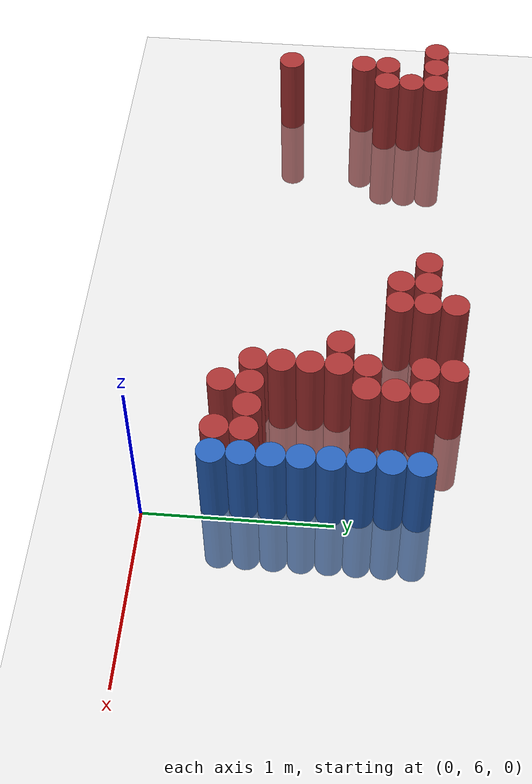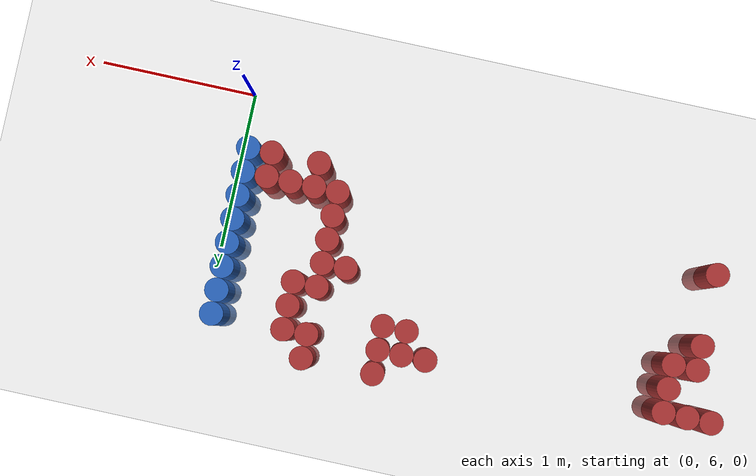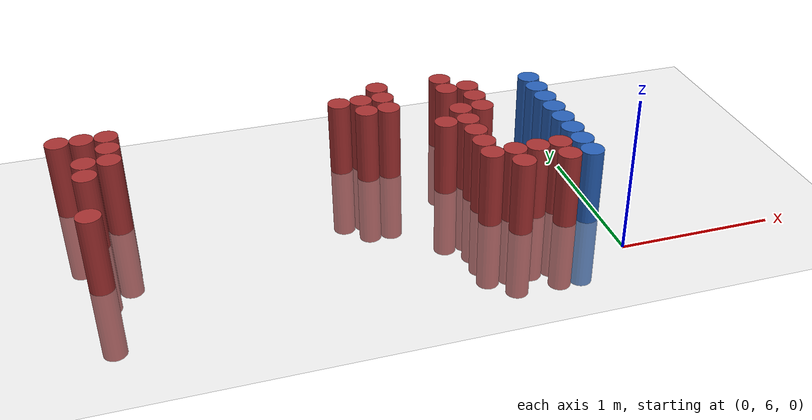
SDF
<sdf version="1.6">
 <world name="default">
  <model name="ground_plane">
   <static>1</static>
   <link name="link">
    <collision name="collision">
     <geometry><plane><normal>0 0 1</normal><size>100 100</size></plane></geometry>
     <surface><friction><ode><mu>100</mu><mu2>50</mu2></ode></friction></surface>
    </collision>
    <visual name="visual">
     <cast_shadows>0</cast_shadows>
     <geometry><plane><normal>0 0 1</normal><size>100 100</size></plane></geometry>
     <material>
      <script><uri>file://media/materials/scripts/gazebo.material</uri><name>Gazebo/Grey</name></script>
     </material>
    </visual>
   </link>
  </model>
  <model name="unit_cylinder_192">
   <static>1</static>
   <pose>-3.225000 7.425000 0.000000 0.000000 0.000000 0.000000</pose>
   <link name="link">
    <inertial>
     <mass>1</mass>
     <inertia><ixx>0.145833</ixx><ixy>0</ixy><ixz>0</ixz><iyy>0.145833</iyy><iyz>0</iyz><izz>0.125</izz></inertia>
    </inertial>
    <collision name="collision">
     <geometry><cylinder><radius>0.075000</radius><length>1</length></cylinder></geometry>
    </collision>
    <visual name="visual">
     <geometry><cylinder><radius>0.075000</radius><length>1</length></cylinder></geometry>
     <material>
      <ambient>0.648000 0.192000 0.192000 1</ambient>
      <diffuse>0.648000 0.192000 0.192000 1</diffuse>
     </material>
     <material>
      <script><name>Gazebo/Grey</name><uri>file://media/materials/scripts/gazebo.material</uri></script>
     </material>
    </visual>
    <sensor name="sensor_contact" type="contact"><contact><collision>collision</collision></contact></sensor>
   </link>
   <plugin filename="gz-sim-touchplugin-system" name="gz::sim::systems::TouchPlugin">
    <target>robot</target>
    <namespace>robot</namespace>
    <time>0.001</time>
    <enabled>true</enabled>
   </plugin>
  </model>
  <model name="unit_cylinder_200">
   <static>1</static>
   <pose>-3.075000 6.525000 0.000000 0.000000 0.000000 0.000000</pose>
   <link name="link">
    <inertial>
     <mass>1</mass>
     <inertia><ixx>0.145833</ixx><ixy>0</ixy><ixz>0</ixz><iyy>0.145833</iyy><iyz>0</iyz><izz>0.125</izz></inertia>
    </inertial>
    <collision name="collision">
     <geometry><cylinder><radius>0.075000</radius><length>1</length></cylinder></geometry>
    </collision>
    <visual name="visual">
     <geometry><cylinder><radius>0.075000</radius><length>1</length></cylinder></geometry>
     <material>
      <ambient>0.648000 0.192000 0.192000 1</ambient>
      <diffuse>0.648000 0.192000 0.192000 1</diffuse>
     </material>
     <material>
      <script><name>Gazebo/Grey</name><uri>file://media/materials/scripts/gazebo.material</uri></script>
     </material>
    </visual>
    <sensor name="sensor_contact" type="contact"><contact><collision>collision</collision></contact></sensor>
   </link>
   <plugin filename="gz-sim-touchplugin-system" name="gz::sim::systems::TouchPlugin">
    <target>robot</target>
    <namespace>robot</namespace>
    <time>0.001</time>
    <enabled>true</enabled>
   </plugin>
  </model>
  <model name="unit_cylinder_201">
   <static>1</static>
   <pose>-3.075000 6.975000 0.000000 0.000000 0.000000 0.000000</pose>
   <link name="link">
    <inertial>
     <mass>1</mass>
     <inertia><ixx>0.145833</ixx><ixy>0</ixy><ixz>0</ixz><iyy>0.145833</iyy><iyz>0</iyz><izz>0.125</izz></inertia>
    </inertial>
    <collision name="collision">
     <geometry><cylinder><radius>0.075000</radius><length>1</length></cylinder></geometry>
    </collision>
    <visual name="visual">
     <geometry><cylinder><radius>0.075000</radius><length>1</length></cylinder></geometry>
     <material>
      <ambient>0.648000 0.192000 0.192000 1</ambient>
      <diffuse>0.648000 0.192000 0.192000 1</diffuse>
     </material>
     <material>
      <script><name>Gazebo/Grey</name><uri>file://media/materials/scripts/gazebo.material</uri></script>
     </material>
    </visual>
    <sensor name="sensor_contact" type="contact"><contact><collision>collision</collision></contact></sensor>
   </link>
   <plugin filename="gz-sim-touchplugin-system" name="gz::sim::systems::TouchPlugin">
    <target>robot</target>
    <namespace>robot</namespace>
    <time>0.001</time>
    <enabled>true</enabled>
   </plugin>
  </model>
  <model name="unit_cylinder_202">
   <static>1</static>
   <pose>-3.075000 7.125000 0.000000 0.000000 0.000000 0.000000</pose>
   <link name="link">
    <inertial>
     <mass>1</mass>
     <inertia><ixx>0.145833</ixx><ixy>0</ixy><ixz>0</ixz><iyy>0.145833</iyy><iyz>0</iyz><izz>0.125</izz></inertia>
    </inertial>
    <collision name="collision">
     <geometry><cylinder><radius>0.075000</radius><length>1</length></cylinder></geometry>
    </collision>
    <visual name="visual">
     <geometry><cylinder><radius>0.075000</radius><length>1</length></cylinder></geometry>
     <material>
      <ambient>0.648000 0.192000 0.192000 1</ambient>
      <diffuse>0.648000 0.192000 0.192000 1</diffuse>
     </material>
     <material>
      <script><name>Gazebo/Grey</name><uri>file://media/materials/scripts/gazebo.material</uri></script>
     </material>
    </visual>
    <sensor name="sensor_contact" type="contact"><contact><collision>collision</collision></contact></sensor>
   </link>
   <plugin filename="gz-sim-touchplugin-system" name="gz::sim::systems::TouchPlugin">
    <target>robot</target>
    <namespace>robot</namespace>
    <time>0.001</time>
    <enabled>true</enabled>
   </plugin>
  </model>
  <model name="unit_cylinder_203">
   <static>1</static>
   <pose>-3.075000 7.425000 0.000000 0.000000 0.000000 0.000000</pose>
   <link name="link">
    <inertial>
     <mass>1</mass>
     <inertia><ixx>0.145833</ixx><ixy>0</ixy><ixz>0</ixz><iyy>0.145833</iyy><iyz>0</iyz><izz>0.125</izz></inertia>
    </inertial>
    <collision name="collision">
     <geometry><cylinder><radius>0.075000</radius><length>1</length></cylinder></geometry>
    </collision>
    <visual name="visual">
     <geometry><cylinder><radius>0.075000</radius><length>1</length></cylinder></geometry>
     <material>
      <ambient>0.648000 0.192000 0.192000 1</ambient>
      <diffuse>0.648000 0.192000 0.192000 1</diffuse>
     </material>
     <material>
      <script><name>Gazebo/Grey</name><uri>file://media/materials/scripts/gazebo.material</uri></script>
     </material>
    </visual>
    <sensor name="sensor_contact" type="contact"><contact><collision>collision</collision></contact></sensor>
   </link>
   <plugin filename="gz-sim-touchplugin-system" name="gz::sim::systems::TouchPlugin">
    <target>robot</target>
    <namespace>robot</namespace>
    <time>0.001</time>
    <enabled>true</enabled>
   </plugin>
  </model>
  <model name="unit_cylinder_210">
   <static>1</static>
   <pose>-2.925000 7.125000 0.000000 0.000000 0.000000 0.000000</pose>
   <link name="link">
    <inertial>
     <mass>1</mass>
     <inertia><ixx>0.145833</ixx><ixy>0</ixy><ixz>0</ixz><iyy>0.145833</iyy><iyz>0</iyz><izz>0.125</izz></inertia>
    </inertial>
    <collision name="collision">
     <geometry><cylinder><radius>0.075000</radius><length>1</length></cylinder></geometry>
    </collision>
    <visual name="visual">
     <geometry><cylinder><radius>0.075000</radius><length>1</length></cylinder></geometry>
     <material>
      <ambient>0.648000 0.192000 0.192000 1</ambient>
      <diffuse>0.648000 0.192000 0.192000 1</diffuse>
     </material>
     <material>
      <script><name>Gazebo/Grey</name><uri>file://media/materials/scripts/gazebo.material</uri></script>
     </material>
    </visual>
    <sensor name="sensor_contact" type="contact"><contact><collision>collision</collision></contact></sensor>
   </link>
   <plugin filename="gz-sim-touchplugin-system" name="gz::sim::systems::TouchPlugin">
    <target>robot</target>
    <namespace>robot</namespace>
    <time>0.001</time>
    <enabled>true</enabled>
   </plugin>
  </model>
  <model name="unit_cylinder_211">
   <static>1</static>
   <pose>-2.925000 7.275000 0.000000 0.000000 0.000000 0.000000</pose>
   <link name="link">
    <inertial>
     <mass>1</mass>
     <inertia><ixx>0.145833</ixx><ixy>0</ixy><ixz>0</ixz><iyy>0.145833</iyy><iyz>0</iyz><izz>0.125</izz></inertia>
    </inertial>
    <collision name="collision">
     <geometry><cylinder><radius>0.075000</radius><length>1</length></cylinder></geometry>
    </collision>
    <visual name="visual">
     <geometry><cylinder><radius>0.075000</radius><length>1</length></cylinder></geometry>
     <material>
      <ambient>0.648000 0.192000 0.192000 1</ambient>
      <diffuse>0.648000 0.192000 0.192000 1</diffuse>
     </material>
     <material>
      <script><name>Gazebo/Grey</name><uri>file://media/materials/scripts/gazebo.material</uri></script>
     </material>
    </visual>
    <sensor name="sensor_contact" type="contact"><contact><collision>collision</collision></contact></sensor>
   </link>
   <plugin filename="gz-sim-touchplugin-system" name="gz::sim::systems::TouchPlugin">
    <target>robot</target>
    <namespace>robot</namespace>
    <time>0.001</time>
    <enabled>true</enabled>
   </plugin>
  </model>
  <model name="unit_cylinder_212">
   <static>1</static>
   <pose>-2.925000 7.425000 0.000000 0.000000 0.000000 0.000000</pose>
   <link name="link">
    <inertial>
     <mass>1</mass>
     <inertia><ixx>0.145833</ixx><ixy>0</ixy><ixz>0</ixz><iyy>0.145833</iyy><iyz>0</iyz><izz>0.125</izz></inertia>
    </inertial>
    <collision name="collision">
     <geometry><cylinder><radius>0.075000</radius><length>1</length></cylinder></geometry>
    </collision>
    <visual name="visual">
     <geometry><cylinder><radius>0.075000</radius><length>1</length></cylinder></geometry>
     <material>
      <ambient>0.648000 0.192000 0.192000 1</ambient>
      <diffuse>0.648000 0.192000 0.192000 1</diffuse>
     </material>
     <material>
      <script><name>Gazebo/Grey</name><uri>file://media/materials/scripts/gazebo.material</uri></script>
     </material>
    </visual>
    <sensor name="sensor_contact" type="contact"><contact><collision>collision</collision></contact></sensor>
   </link>
   <plugin filename="gz-sim-touchplugin-system" name="gz::sim::systems::TouchPlugin">
    <target>robot</target>
    <namespace>robot</namespace>
    <time>0.001</time>
    <enabled>true</enabled>
   </plugin>
  </model>
  <model name="unit_cylinder_232">
   <static>1</static>
   <pose>-1.425000 7.425000 0.000000 0.000000 0.000000 0.000000</pose>
   <link name="link">
    <inertial>
     <mass>1</mass>
     <inertia><ixx>0.145833</ixx><ixy>0</ixy><ixz>0</ixz><iyy>0.145833</iyy><iyz>0</iyz><izz>0.125</izz></inertia>
    </inertial>
    <collision name="collision">
     <geometry><cylinder><radius>0.075000</radius><length>1</length></cylinder></geometry>
    </collision>
    <visual name="visual">
     <geometry><cylinder><radius>0.075000</radius><length>1</length></cylinder></geometry>
     <material>
      <ambient>0.648000 0.192000 0.192000 1</ambient>
      <diffuse>0.648000 0.192000 0.192000 1</diffuse>
     </material>
     <material>
      <script><name>Gazebo/Grey</name><uri>file://media/materials/scripts/gazebo.material</uri></script>
     </material>
    </visual>
    <sensor name="sensor_contact" type="contact"><contact><collision>collision</collision></contact></sensor>
   </link>
   <plugin filename="gz-sim-touchplugin-system" name="gz::sim::systems::TouchPlugin">
    <target>robot</target>
    <namespace>robot</namespace>
    <time>0.001</time>
    <enabled>true</enabled>
   </plugin>
  </model>
  <model name="unit_cylinder_238">
   <static>1</static>
   <pose>-1.275000 7.275000 0.000000 0.000000 0.000000 0.000000</pose>
   <link name="link">
    <inertial>
     <mass>1</mass>
     <inertia><ixx>0.145833</ixx><ixy>0</ixy><ixz>0</ixz><iyy>0.145833</iyy><iyz>0</iyz><izz>0.125</izz></inertia>
    </inertial>
    <collision name="collision">
     <geometry><cylinder><radius>0.075000</radius><length>1</length></cylinder></geometry>
    </collision>
    <visual name="visual">
     <geometry><cylinder><radius>0.075000</radius><length>1</length></cylinder></geometry>
     <material>
      <ambient>0.648000 0.192000 0.192000 1</ambient>
      <diffuse>0.648000 0.192000 0.192000 1</diffuse>
     </material>
     <material>
      <script><name>Gazebo/Grey</name><uri>file://media/materials/scripts/gazebo.material</uri></script>
     </material>
    </visual>
    <sensor name="sensor_contact" type="contact"><contact><collision>collision</collision></contact></sensor>
   </link>
   <plugin filename="gz-sim-touchplugin-system" name="gz::sim::systems::TouchPlugin">
    <target>robot</target>
    <namespace>robot</namespace>
    <time>0.001</time>
    <enabled>true</enabled>
   </plugin>
  </model>
  <model name="unit_cylinder_239">
   <static>1</static>
   <pose>-1.275000 7.425000 0.000000 0.000000 0.000000 0.000000</pose>
   <link name="link">
    <inertial>
     <mass>1</mass>
     <inertia><ixx>0.145833</ixx><ixy>0</ixy><ixz>0</ixz><iyy>0.145833</iyy><iyz>0</iyz><izz>0.125</izz></inertia>
    </inertial>
    <collision name="collision">
     <geometry><cylinder><radius>0.075000</radius><length>1</length></cylinder></geometry>
    </collision>
    <visual name="visual">
     <geometry><cylinder><radius>0.075000</radius><length>1</length></cylinder></geometry>
     <material>
      <ambient>0.648000 0.192000 0.192000 1</ambient>
      <diffuse>0.648000 0.192000 0.192000 1</diffuse>
     </material>
     <material>
      <script><name>Gazebo/Grey</name><uri>file://media/materials/scripts/gazebo.material</uri></script>
     </material>
    </visual>
    <sensor name="sensor_contact" type="contact"><contact><collision>collision</collision></contact></sensor>
   </link>
   <plugin filename="gz-sim-touchplugin-system" name="gz::sim::systems::TouchPlugin">
    <target>robot</target>
    <namespace>robot</namespace>
    <time>0.001</time>
    <enabled>true</enabled>
   </plugin>
  </model>
  <model name="unit_cylinder_246">
   <static>1</static>
   <pose>-1.125000 7.275000 0.000000 0.000000 0.000000 0.000000</pose>
   <link name="link">
    <inertial>
     <mass>1</mass>
     <inertia><ixx>0.145833</ixx><ixy>0</ixy><ixz>0</ixz><iyy>0.145833</iyy><iyz>0</iyz><izz>0.125</izz></inertia>
    </inertial>
    <collision name="collision">
     <geometry><cylinder><radius>0.075000</radius><length>1</length></cylinder></geometry>
    </collision>
    <visual name="visual">
     <geometry><cylinder><radius>0.075000</radius><length>1</length></cylinder></geometry>
     <material>
      <ambient>0.648000 0.192000 0.192000 1</ambient>
      <diffuse>0.648000 0.192000 0.192000 1</diffuse>
     </material>
     <material>
      <script><name>Gazebo/Grey</name><uri>file://media/materials/scripts/gazebo.material</uri></script>
     </material>
    </visual>
    <sensor name="sensor_contact" type="contact"><contact><collision>collision</collision></contact></sensor>
   </link>
   <plugin filename="gz-sim-touchplugin-system" name="gz::sim::systems::TouchPlugin">
    <target>robot</target>
    <namespace>robot</namespace>
    <time>0.001</time>
    <enabled>true</enabled>
   </plugin>
  </model>
  <model name="unit_cylinder_247">
   <static>1</static>
   <pose>-1.125000 7.425000 0.000000 0.000000 0.000000 0.000000</pose>
   <link name="link">
    <inertial>
     <mass>1</mass>
     <inertia><ixx>0.145833</ixx><ixy>0</ixy><ixz>0</ixz><iyy>0.145833</iyy><iyz>0</iyz><izz>0.125</izz></inertia>
    </inertial>
    <collision name="collision">
     <geometry><cylinder><radius>0.075000</radius><length>1</length></cylinder></geometry>
    </collision>
    <visual name="visual">
     <geometry><cylinder><radius>0.075000</radius><length>1</length></cylinder></geometry>
     <material>
      <ambient>0.648000 0.192000 0.192000 1</ambient>
      <diffuse>0.648000 0.192000 0.192000 1</diffuse>
     </material>
     <material>
      <script><name>Gazebo/Grey</name><uri>file://media/materials/scripts/gazebo.material</uri></script>
     </material>
    </visual>
    <sensor name="sensor_contact" type="contact"><contact><collision>collision</collision></contact></sensor>
   </link>
   <plugin filename="gz-sim-touchplugin-system" name="gz::sim::systems::TouchPlugin">
    <target>robot</target>
    <namespace>robot</namespace>
    <time>0.001</time>
    <enabled>true</enabled>
   </plugin>
  </model>
  <model name="unit_cylinder_248">
   <static>1</static>
   <pose>-1.125000 7.575000 0.000000 0.000000 0.000000 0.000000</pose>
   <link name="link">
    <inertial>
     <mass>1</mass>
     <inertia><ixx>0.145833</ixx><ixy>0</ixy><ixz>0</ixz><iyy>0.145833</iyy><iyz>0</iyz><izz>0.125</izz></inertia>
    </inertial>
    <collision name="collision">
     <geometry><cylinder><radius>0.075000</radius><length>1</length></cylinder></geometry>
    </collision>
    <visual name="visual">
     <geometry><cylinder><radius>0.075000</radius><length>1</length></cylinder></geometry>
     <material>
      <ambient>0.648000 0.192000 0.192000 1</ambient>
      <diffuse>0.648000 0.192000 0.192000 1</diffuse>
     </material>
     <material>
      <script><name>Gazebo/Grey</name><uri>file://media/materials/scripts/gazebo.material</uri></script>
     </material>
    </visual>
    <sensor name="sensor_contact" type="contact"><contact><collision>collision</collision></contact></sensor>
   </link>
   <plugin filename="gz-sim-touchplugin-system" name="gz::sim::systems::TouchPlugin">
    <target>robot</target>
    <namespace>robot</namespace>
    <time>0.001</time>
    <enabled>true</enabled>
   </plugin>
  </model>
  <model name="unit_cylinder_259">
   <static>1</static>
   <pose>-0.825000 6.975000 0.000000 0.000000 0.000000 0.000000</pose>
   <link name="link">
    <inertial>
     <mass>1</mass>
     <inertia><ixx>0.145833</ixx><ixy>0</ixy><ixz>0</ixz><iyy>0.145833</iyy><iyz>0</iyz><izz>0.125</izz></inertia>
    </inertial>
    <collision name="collision">
     <geometry><cylinder><radius>0.075000</radius><length>1</length></cylinder></geometry>
    </collision>
    <visual name="visual">
     <geometry><cylinder><radius>0.075000</radius><length>1</length></cylinder></geometry>
     <material>
      <ambient>0.648000 0.192000 0.192000 1</ambient>
      <diffuse>0.648000 0.192000 0.192000 1</diffuse>
     </material>
     <material>
      <script><name>Gazebo/Grey</name><uri>file://media/materials/scripts/gazebo.material</uri></script>
     </material>
    </visual>
    <sensor name="sensor_contact" type="contact"><contact><collision>collision</collision></contact></sensor>
   </link>
   <plugin filename="gz-sim-touchplugin-system" name="gz::sim::systems::TouchPlugin">
    <target>robot</target>
    <namespace>robot</namespace>
    <time>0.001</time>
    <enabled>true</enabled>
   </plugin>
  </model>
  <model name="unit_cylinder_267">
   <static>1</static>
   <pose>-0.675000 6.525000 0.000000 0.000000 0.000000 0.000000</pose>
   <link name="link">
    <inertial>
     <mass>1</mass>
     <inertia><ixx>0.145833</ixx><ixy>0</ixy><ixz>0</ixz><iyy>0.145833</iyy><iyz>0</iyz><izz>0.125</izz></inertia>
    </inertial>
    <collision name="collision">
     <geometry><cylinder><radius>0.075000</radius><length>1</length></cylinder></geometry>
    </collision>
    <visual name="visual">
     <geometry><cylinder><radius>0.075000</radius><length>1</length></cylinder></geometry>
     <material>
      <ambient>0.648000 0.192000 0.192000 1</ambient>
      <diffuse>0.648000 0.192000 0.192000 1</diffuse>
     </material>
     <material>
      <script><name>Gazebo/Grey</name><uri>file://media/materials/scripts/gazebo.material</uri></script>
     </material>
    </visual>
    <sensor name="sensor_contact" type="contact"><contact><collision>collision</collision></contact></sensor>
   </link>
   <plugin filename="gz-sim-touchplugin-system" name="gz::sim::systems::TouchPlugin">
    <target>robot</target>
    <namespace>robot</namespace>
    <time>0.001</time>
    <enabled>true</enabled>
   </plugin>
  </model>
  <model name="unit_cylinder_268">
   <static>1</static>
   <pose>-0.675000 6.675000 0.000000 0.000000 0.000000 0.000000</pose>
   <link name="link">
    <inertial>
     <mass>1</mass>
     <inertia><ixx>0.145833</ixx><ixy>0</ixy><ixz>0</ixz><iyy>0.145833</iyy><iyz>0</iyz><izz>0.125</izz></inertia>
    </inertial>
    <collision name="collision">
     <geometry><cylinder><radius>0.075000</radius><length>1</length></cylinder></geometry>
    </collision>
    <visual name="visual">
     <geometry><cylinder><radius>0.075000</radius><length>1</length></cylinder></geometry>
     <material>
      <ambient>0.648000 0.192000 0.192000 1</ambient>
      <diffuse>0.648000 0.192000 0.192000 1</diffuse>
     </material>
     <material>
      <script><name>Gazebo/Grey</name><uri>file://media/materials/scripts/gazebo.material</uri></script>
     </material>
    </visual>
    <sensor name="sensor_contact" type="contact"><contact><collision>collision</collision></contact></sensor>
   </link>
   <plugin filename="gz-sim-touchplugin-system" name="gz::sim::systems::TouchPlugin">
    <target>robot</target>
    <namespace>robot</namespace>
    <time>0.001</time>
    <enabled>true</enabled>
   </plugin>
  </model>
  <model name="unit_cylinder_269">
   <static>1</static>
   <pose>-0.675000 6.825000 0.000000 0.000000 0.000000 0.000000</pose>
   <link name="link">
    <inertial>
     <mass>1</mass>
     <inertia><ixx>0.145833</ixx><ixy>0</ixy><ixz>0</ixz><iyy>0.145833</iyy><iyz>0</iyz><izz>0.125</izz></inertia>
    </inertial>
    <collision name="collision">
     <geometry><cylinder><radius>0.075000</radius><length>1</length></cylinder></geometry>
    </collision>
    <visual name="visual">
     <geometry><cylinder><radius>0.075000</radius><length>1</length></cylinder></geometry>
     <material>
      <ambient>0.648000 0.192000 0.192000 1</ambient>
      <diffuse>0.648000 0.192000 0.192000 1</diffuse>
     </material>
     <material>
      <script><name>Gazebo/Grey</name><uri>file://media/materials/scripts/gazebo.material</uri></script>
     </material>
    </visual>
    <sensor name="sensor_contact" type="contact"><contact><collision>collision</collision></contact></sensor>
   </link>
   <plugin filename="gz-sim-touchplugin-system" name="gz::sim::systems::TouchPlugin">
    <target>robot</target>
    <namespace>robot</namespace>
    <time>0.001</time>
    <enabled>true</enabled>
   </plugin>
  </model>
  <model name="unit_cylinder_270">
   <static>1</static>
   <pose>-0.675000 6.975000 0.000000 0.000000 0.000000 0.000000</pose>
   <link name="link">
    <inertial>
     <mass>1</mass>
     <inertia><ixx>0.145833</ixx><ixy>0</ixy><ixz>0</ixz><iyy>0.145833</iyy><iyz>0</iyz><izz>0.125</izz></inertia>
    </inertial>
    <collision name="collision">
     <geometry><cylinder><radius>0.075000</radius><length>1</length></cylinder></geometry>
    </collision>
    <visual name="visual">
     <geometry><cylinder><radius>0.075000</radius><length>1</length></cylinder></geometry>
     <material>
      <ambient>0.648000 0.192000 0.192000 1</ambient>
      <diffuse>0.648000 0.192000 0.192000 1</diffuse>
     </material>
     <material>
      <script><name>Gazebo/Grey</name><uri>file://media/materials/scripts/gazebo.material</uri></script>
     </material>
    </visual>
    <sensor name="sensor_contact" type="contact"><contact><collision>collision</collision></contact></sensor>
   </link>
   <plugin filename="gz-sim-touchplugin-system" name="gz::sim::systems::TouchPlugin">
    <target>robot</target>
    <namespace>robot</namespace>
    <time>0.001</time>
    <enabled>true</enabled>
   </plugin>
  </model>
  <model name="unit_cylinder_271">
   <static>1</static>
   <pose>-0.675000 7.125000 0.000000 0.000000 0.000000 0.000000</pose>
   <link name="link">
    <inertial>
     <mass>1</mass>
     <inertia><ixx>0.145833</ixx><ixy>0</ixy><ixz>0</ixz><iyy>0.145833</iyy><iyz>0</iyz><izz>0.125</izz></inertia>
    </inertial>
    <collision name="collision">
     <geometry><cylinder><radius>0.075000</radius><length>1</length></cylinder></geometry>
    </collision>
    <visual name="visual">
     <geometry><cylinder><radius>0.075000</radius><length>1</length></cylinder></geometry>
     <material>
      <ambient>0.648000 0.192000 0.192000 1</ambient>
      <diffuse>0.648000 0.192000 0.192000 1</diffuse>
     </material>
     <material>
      <script><name>Gazebo/Grey</name><uri>file://media/materials/scripts/gazebo.material</uri></script>
     </material>
    </visual>
    <sensor name="sensor_contact" type="contact"><contact><collision>collision</collision></contact></sensor>
   </link>
   <plugin filename="gz-sim-touchplugin-system" name="gz::sim::systems::TouchPlugin">
    <target>robot</target>
    <namespace>robot</namespace>
    <time>0.001</time>
    <enabled>true</enabled>
   </plugin>
  </model>
  <model name="unit_cylinder_272">
   <static>1</static>
   <pose>-0.675000 7.425000 0.000000 0.000000 0.000000 0.000000</pose>
   <link name="link">
    <inertial>
     <mass>1</mass>
     <inertia><ixx>0.145833</ixx><ixy>0</ixy><ixz>0</ixz><iyy>0.145833</iyy><iyz>0</iyz><izz>0.125</izz></inertia>
    </inertial>
    <collision name="collision">
     <geometry><cylinder><radius>0.075000</radius><length>1</length></cylinder></geometry>
    </collision>
    <visual name="visual">
     <geometry><cylinder><radius>0.075000</radius><length>1</length></cylinder></geometry>
     <material>
      <ambient>0.648000 0.192000 0.192000 1</ambient>
      <diffuse>0.648000 0.192000 0.192000 1</diffuse>
     </material>
     <material>
      <script><name>Gazebo/Grey</name><uri>file://media/materials/scripts/gazebo.material</uri></script>
     </material>
    </visual>
    <sensor name="sensor_contact" type="contact"><contact><collision>collision</collision></contact></sensor>
   </link>
   <plugin filename="gz-sim-touchplugin-system" name="gz::sim::systems::TouchPlugin">
    <target>robot</target>
    <namespace>robot</namespace>
    <time>0.001</time>
    <enabled>true</enabled>
   </plugin>
  </model>
  <model name="unit_cylinder_273">
   <static>1</static>
   <pose>-0.675000 7.575000 0.000000 0.000000 0.000000 0.000000</pose>
   <link name="link">
    <inertial>
     <mass>1</mass>
     <inertia><ixx>0.145833</ixx><ixy>0</ixy><ixz>0</ixz><iyy>0.145833</iyy><iyz>0</iyz><izz>0.125</izz></inertia>
    </inertial>
    <collision name="collision">
     <geometry><cylinder><radius>0.075000</radius><length>1</length></cylinder></geometry>
    </collision>
    <visual name="visual">
     <geometry><cylinder><radius>0.075000</radius><length>1</length></cylinder></geometry>
     <material>
      <ambient>0.648000 0.192000 0.192000 1</ambient>
      <diffuse>0.648000 0.192000 0.192000 1</diffuse>
     </material>
     <material>
      <script><name>Gazebo/Grey</name><uri>file://media/materials/scripts/gazebo.material</uri></script>
     </material>
    </visual>
    <sensor name="sensor_contact" type="contact"><contact><collision>collision</collision></contact></sensor>
   </link>
   <plugin filename="gz-sim-touchplugin-system" name="gz::sim::systems::TouchPlugin">
    <target>robot</target>
    <namespace>robot</namespace>
    <time>0.001</time>
    <enabled>true</enabled>
   </plugin>
  </model>
  <model name="unit_cylinder_281">
   <static>1</static>
   <pose>-0.525000 6.375000 0.000000 0.000000 0.000000 0.000000</pose>
   <link name="link">
    <inertial>
     <mass>1</mass>
     <inertia><ixx>0.145833</ixx><ixy>0</ixy><ixz>0</ixz><iyy>0.145833</iyy><iyz>0</iyz><izz>0.125</izz></inertia>
    </inertial>
    <collision name="collision">
     <geometry><cylinder><radius>0.075000</radius><length>1</length></cylinder></geometry>
    </collision>
    <visual name="visual">
     <geometry><cylinder><radius>0.075000</radius><length>1</length></cylinder></geometry>
     <material>
      <ambient>0.648000 0.192000 0.192000 1</ambient>
      <diffuse>0.648000 0.192000 0.192000 1</diffuse>
     </material>
     <material>
      <script><name>Gazebo/Grey</name><uri>file://media/materials/scripts/gazebo.material</uri></script>
     </material>
    </visual>
    <sensor name="sensor_contact" type="contact"><contact><collision>collision</collision></contact></sensor>
   </link>
   <plugin filename="gz-sim-touchplugin-system" name="gz::sim::systems::TouchPlugin">
    <target>robot</target>
    <namespace>robot</namespace>
    <time>0.001</time>
    <enabled>true</enabled>
   </plugin>
  </model>
  <model name="unit_cylinder_282">
   <static>1</static>
   <pose>-0.525000 6.525000 0.000000 0.000000 0.000000 0.000000</pose>
   <link name="link">
    <inertial>
     <mass>1</mass>
     <inertia><ixx>0.145833</ixx><ixy>0</ixy><ixz>0</ixz><iyy>0.145833</iyy><iyz>0</iyz><izz>0.125</izz></inertia>
    </inertial>
    <collision name="collision">
     <geometry><cylinder><radius>0.075000</radius><length>1</length></cylinder></geometry>
    </collision>
    <visual name="visual">
     <geometry><cylinder><radius>0.075000</radius><length>1</length></cylinder></geometry>
     <material>
      <ambient>0.648000 0.192000 0.192000 1</ambient>
      <diffuse>0.648000 0.192000 0.192000 1</diffuse>
     </material>
     <material>
      <script><name>Gazebo/Grey</name><uri>file://media/materials/scripts/gazebo.material</uri></script>
     </material>
    </visual>
    <sensor name="sensor_contact" type="contact"><contact><collision>collision</collision></contact></sensor>
   </link>
   <plugin filename="gz-sim-touchplugin-system" name="gz::sim::systems::TouchPlugin">
    <target>robot</target>
    <namespace>robot</namespace>
    <time>0.001</time>
    <enabled>true</enabled>
   </plugin>
  </model>
  <model name="unit_cylinder_283">
   <static>1</static>
   <pose>-0.525000 7.125000 0.000000 0.000000 0.000000 0.000000</pose>
   <link name="link">
    <inertial>
     <mass>1</mass>
     <inertia><ixx>0.145833</ixx><ixy>0</ixy><ixz>0</ixz><iyy>0.145833</iyy><iyz>0</iyz><izz>0.125</izz></inertia>
    </inertial>
    <collision name="collision">
     <geometry><cylinder><radius>0.075000</radius><length>1</length></cylinder></geometry>
    </collision>
    <visual name="visual">
     <geometry><cylinder><radius>0.075000</radius><length>1</length></cylinder></geometry>
     <material>
      <ambient>0.648000 0.192000 0.192000 1</ambient>
      <diffuse>0.648000 0.192000 0.192000 1</diffuse>
     </material>
     <material>
      <script><name>Gazebo/Grey</name><uri>file://media/materials/scripts/gazebo.material</uri></script>
     </material>
    </visual>
    <sensor name="sensor_contact" type="contact"><contact><collision>collision</collision></contact></sensor>
   </link>
   <plugin filename="gz-sim-touchplugin-system" name="gz::sim::systems::TouchPlugin">
    <target>robot</target>
    <namespace>robot</namespace>
    <time>0.001</time>
    <enabled>true</enabled>
   </plugin>
  </model>
  <model name="unit_cylinder_284">
   <static>1</static>
   <pose>-0.525000 7.275000 0.000000 0.000000 0.000000 0.000000</pose>
   <link name="link">
    <inertial>
     <mass>1</mass>
     <inertia><ixx>0.145833</ixx><ixy>0</ixy><ixz>0</ixz><iyy>0.145833</iyy><iyz>0</iyz><izz>0.125</izz></inertia>
    </inertial>
    <collision name="collision">
     <geometry><cylinder><radius>0.075000</radius><length>1</length></cylinder></geometry>
    </collision>
    <visual name="visual">
     <geometry><cylinder><radius>0.075000</radius><length>1</length></cylinder></geometry>
     <material>
      <ambient>0.648000 0.192000 0.192000 1</ambient>
      <diffuse>0.648000 0.192000 0.192000 1</diffuse>
     </material>
     <material>
      <script><name>Gazebo/Grey</name><uri>file://media/materials/scripts/gazebo.material</uri></script>
     </material>
    </visual>
    <sensor name="sensor_contact" type="contact"><contact><collision>collision</collision></contact></sensor>
   </link>
   <plugin filename="gz-sim-touchplugin-system" name="gz::sim::systems::TouchPlugin">
    <target>robot</target>
    <namespace>robot</namespace>
    <time>0.001</time>
    <enabled>true</enabled>
   </plugin>
  </model>
  <model name="unit_cylinder_285">
   <static>1</static>
   <pose>-0.525000 7.425000 0.000000 0.000000 0.000000 0.000000</pose>
   <link name="link">
    <inertial>
     <mass>1</mass>
     <inertia><ixx>0.145833</ixx><ixy>0</ixy><ixz>0</ixz><iyy>0.145833</iyy><iyz>0</iyz><izz>0.125</izz></inertia>
    </inertial>
    <collision name="collision">
     <geometry><cylinder><radius>0.075000</radius><length>1</length></cylinder></geometry>
    </collision>
    <visual name="visual">
     <geometry><cylinder><radius>0.075000</radius><length>1</length></cylinder></geometry>
     <material>
      <ambient>0.648000 0.192000 0.192000 1</ambient>
      <diffuse>0.648000 0.192000 0.192000 1</diffuse>
     </material>
     <material>
      <script><name>Gazebo/Grey</name><uri>file://media/materials/scripts/gazebo.material</uri></script>
     </material>
    </visual>
    <sensor name="sensor_contact" type="contact"><contact><collision>collision</collision></contact></sensor>
   </link>
   <plugin filename="gz-sim-touchplugin-system" name="gz::sim::systems::TouchPlugin">
    <target>robot</target>
    <namespace>robot</namespace>
    <time>0.001</time>
    <enabled>true</enabled>
   </plugin>
  </model>
  <model name="unit_cylinder_290">
   <static>1</static>
   <pose>-0.375000 6.525000 0.000000 0.000000 0.000000 0.000000</pose>
   <link name="link">
    <inertial>
     <mass>1</mass>
     <inertia><ixx>0.145833</ixx><ixy>0</ixy><ixz>0</ixz><iyy>0.145833</iyy><iyz>0</iyz><izz>0.125</izz></inertia>
    </inertial>
    <collision name="collision">
     <geometry><cylinder><radius>0.075000</radius><length>1</length></cylinder></geometry>
    </collision>
    <visual name="visual">
     <geometry><cylinder><radius>0.075000</radius><length>1</length></cylinder></geometry>
     <material>
      <ambient>0.648000 0.192000 0.192000 1</ambient>
      <diffuse>0.648000 0.192000 0.192000 1</diffuse>
     </material>
     <material>
      <script><name>Gazebo/Grey</name><uri>file://media/materials/scripts/gazebo.material</uri></script>
     </material>
    </visual>
    <sensor name="sensor_contact" type="contact"><contact><collision>collision</collision></contact></sensor>
   </link>
   <plugin filename="gz-sim-touchplugin-system" name="gz::sim::systems::TouchPlugin">
    <target>robot</target>
    <namespace>robot</namespace>
    <time>0.001</time>
    <enabled>true</enabled>
   </plugin>
  </model>
  <model name="unit_cylinder_295">
   <static>1</static>
   <pose>-0.225000 6.375000 0.000000 0.000000 0.000000 0.000000</pose>
   <link name="link">
    <inertial>
     <mass>1</mass>
     <inertia><ixx>0.145833</ixx><ixy>0</ixy><ixz>0</ixz><iyy>0.145833</iyy><iyz>0</iyz><izz>0.125</izz></inertia>
    </inertial>
    <collision name="collision">
     <geometry><cylinder><radius>0.075000</radius><length>1</length></cylinder></geometry>
    </collision>
    <visual name="visual">
     <geometry><cylinder><radius>0.075000</radius><length>1</length></cylinder></geometry>
     <material>
      <ambient>0.648000 0.192000 0.192000 1</ambient>
      <diffuse>0.648000 0.192000 0.192000 1</diffuse>
     </material>
     <material>
      <script><name>Gazebo/Grey</name><uri>file://media/materials/scripts/gazebo.material</uri></script>
     </material>
    </visual>
    <sensor name="sensor_contact" type="contact"><contact><collision>collision</collision></contact></sensor>
   </link>
   <plugin filename="gz-sim-touchplugin-system" name="gz::sim::systems::TouchPlugin">
    <target>robot</target>
    <namespace>robot</namespace>
    <time>0.001</time>
    <enabled>true</enabled>
   </plugin>
  </model>
  <model name="unit_cylinder_296">
   <static>1</static>
   <pose>-0.225000 6.525000 0.000000 0.000000 0.000000 0.000000</pose>
   <link name="link">
    <inertial>
     <mass>1</mass>
     <inertia><ixx>0.145833</ixx><ixy>0</ixy><ixz>0</ixz><iyy>0.145833</iyy><iyz>0</iyz><izz>0.125</izz></inertia>
    </inertial>
    <collision name="collision">
     <geometry><cylinder><radius>0.075000</radius><length>1</length></cylinder></geometry>
    </collision>
    <visual name="visual">
     <geometry><cylinder><radius>0.075000</radius><length>1</length></cylinder></geometry>
     <material>
      <ambient>0.648000 0.192000 0.192000 1</ambient>
      <diffuse>0.648000 0.192000 0.192000 1</diffuse>
     </material>
     <material>
      <script><name>Gazebo/Grey</name><uri>file://media/materials/scripts/gazebo.material</uri></script>
     </material>
    </visual>
    <sensor name="sensor_contact" type="contact"><contact><collision>collision</collision></contact></sensor>
   </link>
   <plugin filename="gz-sim-touchplugin-system" name="gz::sim::systems::TouchPlugin">
    <target>robot</target>
    <namespace>robot</namespace>
    <time>0.001</time>
    <enabled>true</enabled>
   </plugin>
  </model>
  <model name="unit_cylinder_316">
   <static>1</static>
   <pose>-0.075000 6.375000 0.000000 0.000000 0.000000 0.000000</pose>
   <link name="link">
    <inertial>
     <mass>1</mass>
     <inertia><ixx>0.145833</ixx><ixy>0</ixy><ixz>0</ixz><iyy>0.145833</iyy><iyz>0</iyz><izz>0.125</izz></inertia>
    </inertial>
    <collision name="collision">
     <geometry><cylinder><radius>0.075000</radius><length>1</length></cylinder></geometry>
    </collision>
    <visual name="visual">
     <geometry><cylinder><radius>0.075000</radius><length>1</length></cylinder></geometry>
     <material>
      <ambient>0.152000 0.379000 0.720000 1</ambient>
      <diffuse>0.152000 0.379000 0.720000 1</diffuse>
     </material>
     <material>
      <script><name>Gazebo/Grey</name><uri>file://media/materials/scripts/gazebo.material</uri></script>
     </material>
    </visual>
    <sensor name="sensor_contact" type="contact"><contact><collision>collision</collision></contact></sensor>
   </link>
   <plugin filename="gz-sim-touchplugin-system" name="gz::sim::systems::TouchPlugin">
    <target>robot</target>
    <namespace>robot</namespace>
    <time>0.001</time>
    <enabled>true</enabled>
   </plugin>
  </model>
  <model name="unit_cylinder_317">
   <static>1</static>
   <pose>-0.075000 6.525000 0.000000 0.000000 0.000000 0.000000</pose>
   <link name="link">
    <inertial>
     <mass>1</mass>
     <inertia><ixx>0.145833</ixx><ixy>0</ixy><ixz>0</ixz><iyy>0.145833</iyy><iyz>0</iyz><izz>0.125</izz></inertia>
    </inertial>
    <collision name="collision">
     <geometry><cylinder><radius>0.075000</radius><length>1</length></cylinder></geometry>
    </collision>
    <visual name="visual">
     <geometry><cylinder><radius>0.075000</radius><length>1</length></cylinder></geometry>
     <material>
      <ambient>0.152000 0.379000 0.720000 1</ambient>
      <diffuse>0.152000 0.379000 0.720000 1</diffuse>
     </material>
     <material>
      <script><name>Gazebo/Grey</name><uri>file://media/materials/scripts/gazebo.material</uri></script>
     </material>
    </visual>
    <sensor name="sensor_contact" type="contact"><contact><collision>collision</collision></contact></sensor>
   </link>
   <plugin filename="gz-sim-touchplugin-system" name="gz::sim::systems::TouchPlugin">
    <target>robot</target>
    <namespace>robot</namespace>
    <time>0.001</time>
    <enabled>true</enabled>
   </plugin>
  </model>
  <model name="unit_cylinder_318">
   <static>1</static>
   <pose>-0.075000 6.675000 0.000000 0.000000 0.000000 0.000000</pose>
   <link name="link">
    <inertial>
     <mass>1</mass>
     <inertia><ixx>0.145833</ixx><ixy>0</ixy><ixz>0</ixz><iyy>0.145833</iyy><iyz>0</iyz><izz>0.125</izz></inertia>
    </inertial>
    <collision name="collision">
     <geometry><cylinder><radius>0.075000</radius><length>1</length></cylinder></geometry>
    </collision>
    <visual name="visual">
     <geometry><cylinder><radius>0.075000</radius><length>1</length></cylinder></geometry>
     <material>
      <ambient>0.152000 0.379000 0.720000 1</ambient>
      <diffuse>0.152000 0.379000 0.720000 1</diffuse>
     </material>
     <material>
      <script><name>Gazebo/Grey</name><uri>file://media/materials/scripts/gazebo.material</uri></script>
     </material>
    </visual>
    <sensor name="sensor_contact" type="contact"><contact><collision>collision</collision></contact></sensor>
   </link>
   <plugin filename="gz-sim-touchplugin-system" name="gz::sim::systems::TouchPlugin">
    <target>robot</target>
    <namespace>robot</namespace>
    <time>0.001</time>
    <enabled>true</enabled>
   </plugin>
  </model>
  <model name="unit_cylinder_319">
   <static>1</static>
   <pose>-0.075000 6.825000 0.000000 0.000000 0.000000 0.000000</pose>
   <link name="link">
    <inertial>
     <mass>1</mass>
     <inertia><ixx>0.145833</ixx><ixy>0</ixy><ixz>0</ixz><iyy>0.145833</iyy><iyz>0</iyz><izz>0.125</izz></inertia>
    </inertial>
    <collision name="collision">
     <geometry><cylinder><radius>0.075000</radius><length>1</length></cylinder></geometry>
    </collision>
    <visual name="visual">
     <geometry><cylinder><radius>0.075000</radius><length>1</length></cylinder></geometry>
     <material>
      <ambient>0.152000 0.379000 0.720000 1</ambient>
      <diffuse>0.152000 0.379000 0.720000 1</diffuse>
     </material>
     <material>
      <script><name>Gazebo/Grey</name><uri>file://media/materials/scripts/gazebo.material</uri></script>
     </material>
    </visual>
    <sensor name="sensor_contact" type="contact"><contact><collision>collision</collision></contact></sensor>
   </link>
   <plugin filename="gz-sim-touchplugin-system" name="gz::sim::systems::TouchPlugin">
    <target>robot</target>
    <namespace>robot</namespace>
    <time>0.001</time>
    <enabled>true</enabled>
   </plugin>
  </model>
  <model name="unit_cylinder_320">
   <static>1</static>
   <pose>-0.075000 6.975000 0.000000 0.000000 0.000000 0.000000</pose>
   <link name="link">
    <inertial>
     <mass>1</mass>
     <inertia><ixx>0.145833</ixx><ixy>0</ixy><ixz>0</ixz><iyy>0.145833</iyy><iyz>0</iyz><izz>0.125</izz></inertia>
    </inertial>
    <collision name="collision">
     <geometry><cylinder><radius>0.075000</radius><length>1</length></cylinder></geometry>
    </collision>
    <visual name="visual">
     <geometry><cylinder><radius>0.075000</radius><length>1</length></cylinder></geometry>
     <material>
      <ambient>0.152000 0.379000 0.720000 1</ambient>
      <diffuse>0.152000 0.379000 0.720000 1</diffuse>
     </material>
     <material>
      <script><name>Gazebo/Grey</name><uri>file://media/materials/scripts/gazebo.material</uri></script>
     </material>
    </visual>
    <sensor name="sensor_contact" type="contact"><contact><collision>collision</collision></contact></sensor>
   </link>
   <plugin filename="gz-sim-touchplugin-system" name="gz::sim::systems::TouchPlugin">
    <target>robot</target>
    <namespace>robot</namespace>
    <time>0.001</time>
    <enabled>true</enabled>
   </plugin>
  </model>
  <model name="unit_cylinder_321">
   <static>1</static>
   <pose>-0.075000 7.125000 0.000000 0.000000 0.000000 0.000000</pose>
   <link name="link">
    <inertial>
     <mass>1</mass>
     <inertia><ixx>0.145833</ixx><ixy>0</ixy><ixz>0</ixz><iyy>0.145833</iyy><iyz>0</iyz><izz>0.125</izz></inertia>
    </inertial>
    <collision name="collision">
     <geometry><cylinder><radius>0.075000</radius><length>1</length></cylinder></geometry>
    </collision>
    <visual name="visual">
     <geometry><cylinder><radius>0.075000</radius><length>1</length></cylinder></geometry>
     <material>
      <ambient>0.152000 0.379000 0.720000 1</ambient>
      <diffuse>0.152000 0.379000 0.720000 1</diffuse>
     </material>
     <material>
      <script><name>Gazebo/Grey</name><uri>file://media/materials/scripts/gazebo.material</uri></script>
     </material>
    </visual>
    <sensor name="sensor_contact" type="contact"><contact><collision>collision</collision></contact></sensor>
   </link>
   <plugin filename="gz-sim-touchplugin-system" name="gz::sim::systems::TouchPlugin">
    <target>robot</target>
    <namespace>robot</namespace>
    <time>0.001</time>
    <enabled>true</enabled>
   </plugin>
  </model>
  <model name="unit_cylinder_322">
   <static>1</static>
   <pose>-0.075000 7.275000 0.000000 0.000000 0.000000 0.000000</pose>
   <link name="link">
    <inertial>
     <mass>1</mass>
     <inertia><ixx>0.145833</ixx><ixy>0</ixy><ixz>0</ixz><iyy>0.145833</iyy><iyz>0</iyz><izz>0.125</izz></inertia>
    </inertial>
    <collision name="collision">
     <geometry><cylinder><radius>0.075000</radius><length>1</length></cylinder></geometry>
    </collision>
    <visual name="visual">
     <geometry><cylinder><radius>0.075000</radius><length>1</length></cylinder></geometry>
     <material>
      <ambient>0.152000 0.379000 0.720000 1</ambient>
      <diffuse>0.152000 0.379000 0.720000 1</diffuse>
     </material>
     <material>
      <script><name>Gazebo/Grey</name><uri>file://media/materials/scripts/gazebo.material</uri></script>
     </material>
    </visual>
    <sensor name="sensor_contact" type="contact"><contact><collision>collision</collision></contact></sensor>
   </link>
   <plugin filename="gz-sim-touchplugin-system" name="gz::sim::systems::TouchPlugin">
    <target>robot</target>
    <namespace>robot</namespace>
    <time>0.001</time>
    <enabled>true</enabled>
   </plugin>
  </model>
  <model name="unit_cylinder_323">
   <static>1</static>
   <pose>-0.075000 7.425000 0.000000 0.000000 0.000000 0.000000</pose>
   <link name="link">
    <inertial>
     <mass>1</mass>
     <inertia><ixx>0.145833</ixx><ixy>0</ixy><ixz>0</ixz><iyy>0.145833</iyy><iyz>0</iyz><izz>0.125</izz></inertia>
    </inertial>
    <collision name="collision">
     <geometry><cylinder><radius>0.075000</radius><length>1</length></cylinder></geometry>
    </collision>
    <visual name="visual">
     <geometry><cylinder><radius>0.075000</radius><length>1</length></cylinder></geometry>
     <material>
      <ambient>0.152000 0.379000 0.720000 1</ambient>
      <diffuse>0.152000 0.379000 0.720000 1</diffuse>
     </material>
     <material>
      <script><name>Gazebo/Grey</name><uri>file://media/materials/scripts/gazebo.material</uri></script>
     </material>
    </visual>
    <sensor name="sensor_contact" type="contact"><contact><collision>collision</collision></contact></sensor>
   </link>
   <plugin filename="gz-sim-touchplugin-system" name="gz::sim::systems::TouchPlugin">
    <target>robot</target>
    <namespace>robot</namespace>
    <time>0.001</time>
    <enabled>true</enabled>
   </plugin>
  </model>
 </world>
</sdf>
